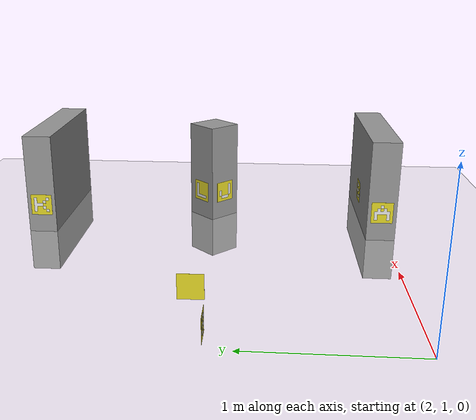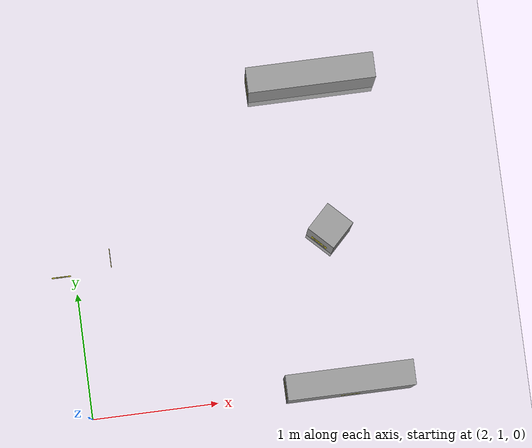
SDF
<sdf version="1.6">
 <world name="default">
  <model name="ground_plane">
   <static>1</static>
   <link name="link">
    <collision name="collision">
     <geometry><plane><normal>0 0 1</normal><size>100 100</size></plane></geometry>
     <surface><friction><ode><mu>100</mu><mu2>50</mu2></ode></friction></surface>
    </collision>
    <visual name="visual">
     <cast_shadows>0</cast_shadows>
     <geometry><plane><normal>0 0 1</normal><size>100 100</size></plane></geometry>
     <material>
      <script><uri>file://media/materials/scripts/gazebo.material</uri><name>Gazebo/Gray</name></script>
     </material>
    </visual>
   </link>
  </model>
  <model name="Untitled1_clone_0_clone_0">
   <pose>4.04 1.035 0 0 0 -1.5708</pose>
   <link name="Wall_0">
    <collision name="Wall_0_Collision">
     <geometry><box><size>1 0.2 1</size></box></geometry>
     <pose>0 0 0.2 0 -0 0</pose>
    </collision>
    <visual name="Wall_0_Visual">
     <pose>0 0 0.2 0 -0 0</pose>
     <geometry><box><size>1 0.2 1</size></box></geometry>
     <material>
      <script><uri>file://media/materials/scripts/gazebo.material</uri><name>Gazebo/Gray</name></script>
      <ambient>1 1 1 1</ambient>
     </material>
     <meta><layer>0</layer></meta>
    </visual>
    <pose>0 0 0 0 -0 1.5708</pose>
   </link>
   <static>1</static>
  </model>
  <model name="Untitled1_clone_0_clone_1">
   <pose>4.04 3.445 0 0 0 -1.5708</pose>
   <link name="Wall_0">
    <collision name="Wall_0_Collision">
     <geometry><box><size>1 0.2 1</size></box></geometry>
     <pose>0 0 0.2 0 -0 0</pose>
    </collision>
    <visual name="Wall_0_Visual">
     <pose>0 0 0.2 0 -0 0</pose>
     <geometry><box><size>1 0.2 1</size></box></geometry>
     <material>
      <script><uri>file://media/materials/scripts/gazebo.material</uri><name>Gazebo/Gray</name></script>
      <ambient>1 1 1 1</ambient>
     </material>
     <meta><layer>0</layer></meta>
    </visual>
    <pose>0 0 0 0 -0 1.5708</pose>
   </link>
   <static>1</static>
  </model>
  <model name="Untitled4">
   <pose>4.04 2.24 0 0 -0 0.785397</pose>
   <link name="Wall_19">
    <collision name="Wall_19_Collision">
     <geometry><box><size>0.25 0.25 1</size></box></geometry>
     <pose>0 0 0.2 0 -0 0</pose>
    </collision>
    <visual name="Wall_19_Visual">
     <pose>0 0 0.2 0 -0 0</pose>
     <geometry><box><size>0.25 0.25 1</size></box></geometry>
     <material>
      <script><uri>file://media/materials/scripts/gazebo.material</uri><name>Gazebo/Gray</name></script>
      <ambient>1 1 1 1</ambient>
     </material>
     <meta><layer>0</layer></meta>
    </visual>
   </link>
   <static>1</static>
  </model>
  <model name="labal9">
   <link name="base">
    <inertial>
     <pose>-0.001086 -0.000137 -0.001593 0 -0 0</pose>
     <mass>0.0137688</mass>
     <inertia>
      <ixx>2.44128e-05</ixx>
      <ixy>-9.16282e-09</ixy>
      <ixz>4.39336e-07</ixz>
      <iyy>2.60674e-05</iyy>
      <iyz>-1.55543e-08</iyz>
      <izz>4.38445e-05</izz>
     </inertia>
    </inertial>
    <collision name="base_collision">
     <geometry>
      <mesh><scale>1 1 1</scale><uri>/home/tdt/catkin_ws/src/RoboRTS/small_car/meshes/base.STL</uri></mesh>
     </geometry>
    </collision>
    <collision name="base_fixed_joint_lump__labal9_collision_1">
     <pose>0 0 0 1.5708 -0 0</pose>
     <geometry>
      <mesh><scale>1 1 1</scale><uri>/home/tdt/catkin_ws/src/RoboRTS/small_car/meshes/labal9.STL</uri></mesh>
     </geometry>
    </collision>
    <visual name="base_visual">
     <geometry>
      <mesh><scale>1 1 1</scale><uri>/home/tdt/catkin_ws/src/RoboRTS/small_car/meshes/base.STL</uri></mesh>
     </geometry>
     <material>
      <script><name>Gazebo/Yellow</name><uri>file://media/materials/scripts/gazebo.material</uri></script>
     </material>
    </visual>
    <visual name="base_fixed_joint_lump__labal9_visual_1">
     <pose>0 0 0 1.5708 -0 0</pose>
     <geometry>
      <mesh><scale>1 1 1</scale><uri>/home/tdt/catkin_ws/src/RoboRTS/small_car/meshes/labal9.STL</uri></mesh>
     </geometry>
     <material>
      <script><name>Gazebo/White</name><uri>file://media/materials/scripts/gazebo.material</uri></script>
     </material>
    </visual>
   </link>
   <pose>2.3 2.24 0.2 0 -0 1.57</pose>
   <static>1</static>
  </model>
  <model name="labal8">
   <link name="base">
    <inertial>
     <pose>-0.001086 -0.000137 -0.001593 0 -0 0</pose>
     <mass>0.0137688</mass>
     <inertia>
      <ixx>2.44128e-05</ixx>
      <ixy>-9.16282e-09</ixy>
      <ixz>4.39336e-07</ixz>
      <iyy>2.60674e-05</iyy>
      <iyz>-1.55543e-08</iyz>
      <izz>4.38445e-05</izz>
     </inertia>
    </inertial>
    <collision name="base_collision">
     <geometry>
      <mesh><scale>1 1 1</scale><uri>/home/tdt/catkin_ws/src/RoboRTS/small_car/meshes/base.STL</uri></mesh>
     </geometry>
    </collision>
    <collision name="base_fixed_joint_lump__labal8_collision_1">
     <pose>0 0 0 1.5708 -0 0</pose>
     <geometry>
      <mesh><scale>1 1 1</scale><uri>/home/tdt/catkin_ws/src/RoboRTS/small_car/meshes/labal8.STL</uri></mesh>
     </geometry>
    </collision>
    <visual name="base_visual">
     <geometry>
      <mesh><scale>1 1 1</scale><uri>/home/tdt/catkin_ws/src/RoboRTS/small_car/meshes/base.STL</uri></mesh>
     </geometry>
     <material>
      <script><name>Gazebo/Yellow</name><uri>file://media/materials/scripts/gazebo.material</uri></script>
     </material>
    </visual>
    <visual name="base_fixed_joint_lump__labal8_visual_1">
     <pose>0 0 0 1.5708 -0 0</pose>
     <geometry>
      <mesh><scale>1 1 1</scale><uri>/home/tdt/catkin_ws/src/RoboRTS/small_car/meshes/labal8.STL</uri></mesh>
     </geometry>
     <material>
      <script><name>Gazebo/White</name><uri>file://media/materials/scripts/gazebo.material</uri></script>
     </material>
    </visual>
   </link>
   <pose>1.9 2.14 0.2 0 -0 0</pose>
   <static>1</static>
  </model>
  <model name="labal_D">
   <link name="base">
    <inertial>
     <pose>-0.001086 -0.000137 -0.001593 0 -0 0</pose>
     <mass>0.0137688</mass>
     <inertia>
      <ixx>2.44128e-05</ixx>
      <ixy>-9.16282e-09</ixy>
      <ixz>4.39336e-07</ixz>
      <iyy>2.60674e-05</iyy>
      <iyz>-1.55543e-08</iyz>
      <izz>4.38445e-05</izz>
     </inertia>
    </inertial>
    <collision name="base_collision">
     <geometry>
      <mesh><scale>1 1 1</scale><uri>/home/tdt/catkin_ws/src/RoboRTS/small_car/meshes/base.STL</uri></mesh>
     </geometry>
    </collision>
    <collision name="base_fixed_joint_lump__labal_D_collision_1">
     <pose>0 0 0 1.5708 -0 0</pose>
     <geometry>
      <mesh><scale>1 1 1</scale><uri>/home/tdt/catkin_ws/src/RoboRTS/small_car/meshes/labal_D.STL</uri></mesh>
     </geometry>
    </collision>
    <visual name="base_visual">
     <geometry>
      <mesh><scale>1 1 1</scale><uri>/home/tdt/catkin_ws/src/RoboRTS/small_car/meshes/base.STL</uri></mesh>
     </geometry>
     <material>
      <script><name>Gazebo/Yellow</name><uri>file://media/materials/scripts/gazebo.material</uri></script>
     </material>
    </visual>
    <visual name="base_fixed_joint_lump__labal_D_visual_1">
     <pose>0 0 0 1.5708 -0 0</pose>
     <geometry>
      <mesh><scale>1 1 1</scale><uri>/home/tdt/catkin_ws/src/RoboRTS/small_car/meshes/labal_D.STL</uri></mesh>
     </geometry>
     <material>
      <script><name>Gazebo/White</name><uri>file://media/materials/scripts/gazebo.material</uri></script>
     </material>
    </visual>
   </link>
   <pose>4.04 0.935 0.2 0 -0 0</pose>
   <static>1</static>
  </model>
  <model name="labal_B">
   <link name="base">
    <inertial>
     <pose>-0.001086 -0.000137 -0.001593 0 -0 0</pose>
     <mass>0.0137688</mass>
     <inertia>
      <ixx>2.44128e-05</ixx>
      <ixy>-9.16282e-09</ixy>
      <ixz>4.39336e-07</ixz>
      <iyy>2.60674e-05</iyy>
      <iyz>-1.55543e-08</iyz>
      <izz>4.38445e-05</izz>
     </inertia>
    </inertial>
    <collision name="base_collision">
     <geometry>
      <mesh><scale>1 1 1</scale><uri>/home/tdt/catkin_ws/src/RoboRTS/small_car/meshes/base.STL</uri></mesh>
     </geometry>
    </collision>
    <collision name="base_fixed_joint_lump__labal_B_collision_1">
     <pose>0 0 0 1.5708 -0 0</pose>
     <geometry>
      <mesh><scale>1 1 1</scale><uri>/home/tdt/catkin_ws/src/RoboRTS/small_car/meshes/labal_B.STL</uri></mesh>
     </geometry>
    </collision>
    <visual name="base_visual">
     <geometry>
      <mesh><scale>1 1 1</scale><uri>/home/tdt/catkin_ws/src/RoboRTS/small_car/meshes/base.STL</uri></mesh>
     </geometry>
     <material>
      <script><name>Gazebo/Yellow</name><uri>file://media/materials/scripts/gazebo.material</uri></script>
     </material>
    </visual>
    <visual name="base_fixed_joint_lump__labal_B_visual_1">
     <pose>0 0 0 1.5708 -0 0</pose>
     <geometry>
      <mesh><scale>1 1 1</scale><uri>/home/tdt/catkin_ws/src/RoboRTS/small_car/meshes/labal_B.STL</uri></mesh>
     </geometry>
     <material>
      <script><name>Gazebo/White</name><uri>file://media/materials/scripts/gazebo.material</uri></script>
     </material>
    </visual>
   </link>
   <pose>4.04 1.135 0.2 0 -0 3.14</pose>
   <static>1</static>
  </model>
  <model name="labal_A">
   <link name="base">
    <inertial>
     <pose>-0.001086 -0.000137 -0.001593 0 -0 0</pose>
     <mass>0.0137688</mass>
     <inertia>
      <ixx>2.44128e-05</ixx>
      <ixy>-9.16282e-09</ixy>
      <ixz>4.39336e-07</ixz>
      <iyy>2.60674e-05</iyy>
      <iyz>-1.55543e-08</iyz>
      <izz>4.38445e-05</izz>
     </inertia>
    </inertial>
    <collision name="base_collision">
     <geometry>
      <mesh><scale>1 1 1</scale><uri>/home/tdt/catkin_ws/src/RoboRTS/small_car/meshes/base.STL</uri></mesh>
     </geometry>
    </collision>
    <collision name="base_fixed_joint_lump__labal_A_collision_1">
     <pose>0 0 0 1.5708 -0 0</pose>
     <geometry>
      <mesh><scale>1 1 1</scale><uri>/home/tdt/catkin_ws/src/RoboRTS/small_car/meshes/labal_A.STL</uri></mesh>
     </geometry>
    </collision>
    <visual name="base_visual">
     <geometry>
      <mesh><scale>1 1 1</scale><uri>/home/tdt/catkin_ws/src/RoboRTS/small_car/meshes/base.STL</uri></mesh>
     </geometry>
     <material>
      <script><name>Gazebo/Yellow</name><uri>file://media/materials/scripts/gazebo.material</uri></script>
     </material>
    </visual>
    <visual name="base_fixed_joint_lump__labal_A_visual_1">
     <pose>0 0 0 1.5708 -0 0</pose>
     <geometry>
      <mesh><scale>1 1 1</scale><uri>/home/tdt/catkin_ws/src/RoboRTS/small_car/meshes/labal_A.STL</uri></mesh>
     </geometry>
     <material>
      <script><name>Gazebo/White</name><uri>file://media/materials/scripts/gazebo.material</uri></script>
     </material>
    </visual>
   </link>
   <pose>3.54 1.035 0.2 0 0 -1.57</pose>
   <static>1</static>
  </model>
  <model name="labal_J">
   <link name="base">
    <inertial>
     <pose>-0.001086 -0.000137 -0.001593 0 -0 0</pose>
     <mass>0.0137688</mass>
     <inertia>
      <ixx>2.44128e-05</ixx>
      <ixy>-9.16282e-09</ixy>
      <ixz>4.39336e-07</ixz>
      <iyy>2.60674e-05</iyy>
      <iyz>-1.55543e-08</iyz>
      <izz>4.38445e-05</izz>
     </inertia>
    </inertial>
    <collision name="base_collision">
     <geometry>
      <mesh><scale>1 1 1</scale><uri>/home/tdt/catkin_ws/src/RoboRTS/small_car/meshes/base.STL</uri></mesh>
     </geometry>
    </collision>
    <collision name="base_fixed_joint_lump__labal_J_collision_1">
     <pose>0 0 0 1.5708 -0 0</pose>
     <geometry>
      <mesh><scale>1 1 1</scale><uri>/home/tdt/catkin_ws/src/RoboRTS/small_car/meshes/labal_J.STL</uri></mesh>
     </geometry>
    </collision>
    <visual name="base_visual">
     <geometry>
      <mesh><scale>1 1 1</scale><uri>/home/tdt/catkin_ws/src/RoboRTS/small_car/meshes/base.STL</uri></mesh>
     </geometry>
     <material>
      <script><name>Gazebo/Yellow</name><uri>file://media/materials/scripts/gazebo.material</uri></script>
     </material>
    </visual>
    <visual name="base_fixed_joint_lump__labal_J_visual_1">
     <pose>0 0 0 1.5708 -0 0</pose>
     <geometry>
      <mesh><scale>1 1 1</scale><uri>/home/tdt/catkin_ws/src/RoboRTS/small_car/meshes/labal_J.STL</uri></mesh>
     </geometry>
     <material>
      <script><name>Gazebo/White</name><uri>file://media/materials/scripts/gazebo.material</uri></script>
     </material>
    </visual>
   </link>
   <pose>3.95 2.152 0.2 0 0 -0.785</pose>
   <static>1</static>
  </model>
  <model name="labal_L">
   <link name="base">
    <inertial>
     <pose>-0.001086 -0.000137 -0.001593 0 -0 0</pose>
     <mass>0.0137688</mass>
     <inertia>
      <ixx>2.44128e-05</ixx>
      <ixy>-9.16282e-09</ixy>
      <ixz>4.39336e-07</ixz>
      <iyy>2.60674e-05</iyy>
      <iyz>-1.55543e-08</iyz>
      <izz>4.38445e-05</izz>
     </inertia>
    </inertial>
    <collision name="base_collision">
     <geometry>
      <mesh><scale>1 1 1</scale><uri>/home/tdt/catkin_ws/src/RoboRTS/small_car/meshes/base.STL</uri></mesh>
     </geometry>
    </collision>
    <collision name="base_fixed_joint_lump__labal_L_collision_1">
     <pose>0 0 0 1.5708 -0 0</pose>
     <geometry>
      <mesh><scale>1 1 1</scale><uri>/home/tdt/catkin_ws/src/RoboRTS/small_car/meshes/labal_L.STL</uri></mesh>
     </geometry>
    </collision>
    <visual name="base_visual">
     <geometry>
      <mesh><scale>1 1 1</scale><uri>/home/tdt/catkin_ws/src/RoboRTS/small_car/meshes/base.STL</uri></mesh>
     </geometry>
     <material>
      <script><name>Gazebo/Yellow</name><uri>file://media/materials/scripts/gazebo.material</uri></script>
     </material>
    </visual>
    <visual name="base_fixed_joint_lump__labal_L_visual_1">
     <pose>0 0 0 1.5708 -0 0</pose>
     <geometry>
      <mesh><scale>1 1 1</scale><uri>/home/tdt/catkin_ws/src/RoboRTS/small_car/meshes/labal_L.STL</uri></mesh>
     </geometry>
     <material>
      <script><name>Gazebo/White</name><uri>file://media/materials/scripts/gazebo.material</uri></script>
     </material>
    </visual>
   </link>
   <pose>3.95 2.328 0.2 0 0 -2.355</pose>
   <static>1</static>
  </model>
  <model name="labal_K">
   <link name="base">
    <inertial>
     <pose>-0.001086 -0.000137 -0.001593 0 -0 0</pose>
     <mass>0.0137688</mass>
     <inertia>
      <ixx>2.44128e-05</ixx>
      <ixy>-9.16282e-09</ixy>
      <ixz>4.39336e-07</ixz>
      <iyy>2.60674e-05</iyy>
      <iyz>-1.55543e-08</iyz>
      <izz>4.38445e-05</izz>
     </inertia>
    </inertial>
    <collision name="base_collision">
     <geometry>
      <mesh><scale>1 1 1</scale><uri>/home/tdt/catkin_ws/src/RoboRTS/small_car/meshes/base.STL</uri></mesh>
     </geometry>
    </collision>
    <collision name="base_fixed_joint_lump__labal_K_collision_1">
     <pose>0 0 0 1.5708 -0 0</pose>
     <geometry>
      <mesh><scale>1 1 1</scale><uri>/home/tdt/catkin_ws/src/RoboRTS/small_car/meshes/labal_K.STL</uri></mesh>
     </geometry>
    </collision>
    <visual name="base_visual">
     <geometry>
      <mesh><scale>1 1 1</scale><uri>/home/tdt/catkin_ws/src/RoboRTS/small_car/meshes/base.STL</uri></mesh>
     </geometry>
     <material>
      <script><name>Gazebo/Yellow</name><uri>file://media/materials/scripts/gazebo.material</uri></script>
     </material>
    </visual>
    <visual name="base_fixed_joint_lump__labal_K_visual_1">
     <pose>0 0 0 1.5708 -0 0</pose>
     <geometry>
      <mesh><scale>1 1 1</scale><uri>/home/tdt/catkin_ws/src/RoboRTS/small_car/meshes/labal_K.STL</uri></mesh>
     </geometry>
     <material>
      <script><name>Gazebo/White</name><uri>file://media/materials/scripts/gazebo.material</uri></script>
     </material>
    </visual>
   </link>
   <pose>3.54 3.445 0.2 0 0 -1.57</pose>
   <static>1</static>
  </model>
 </world>
</sdf>
